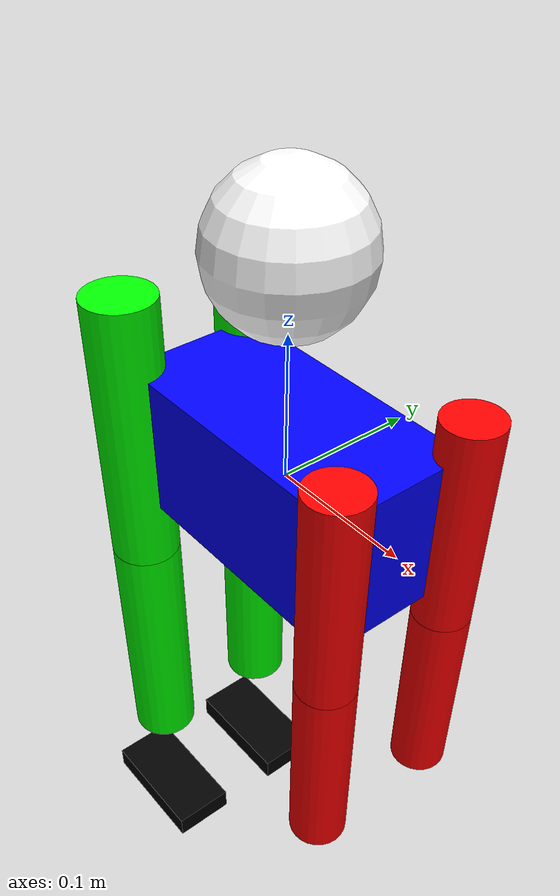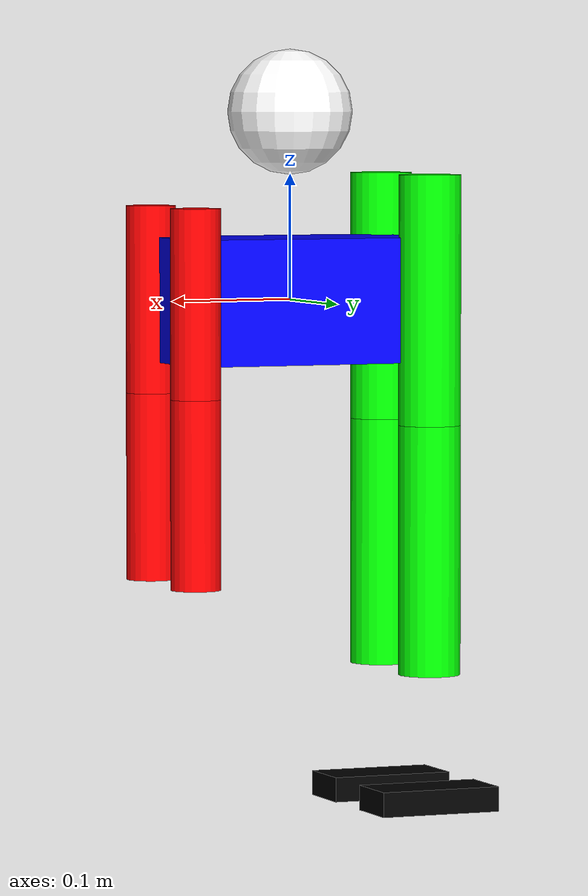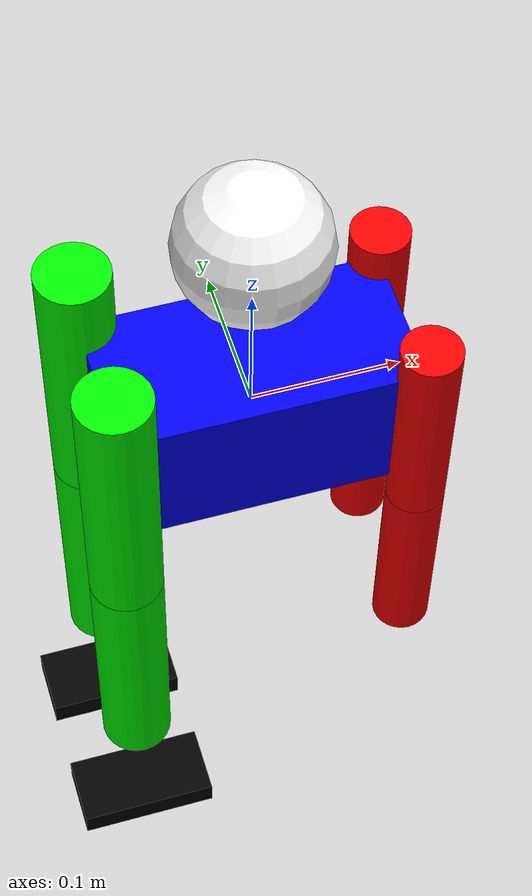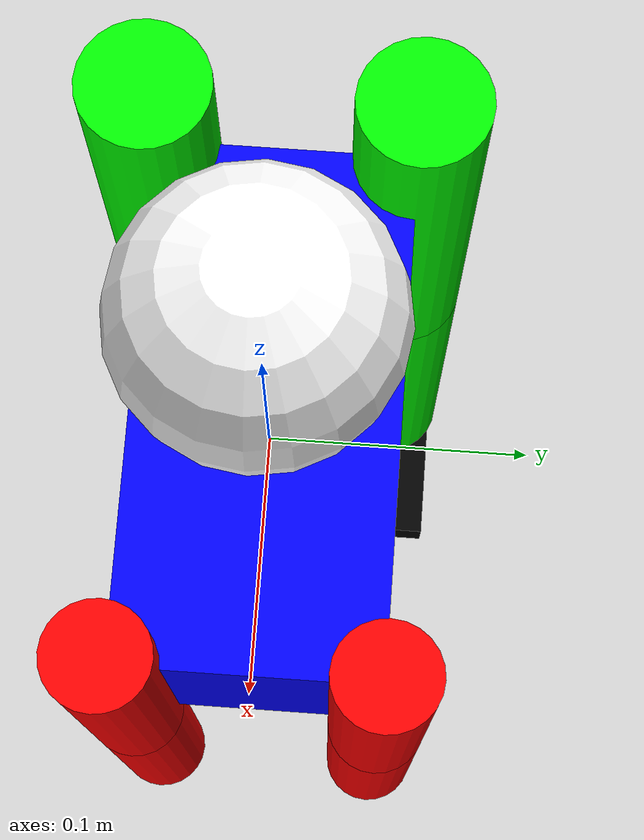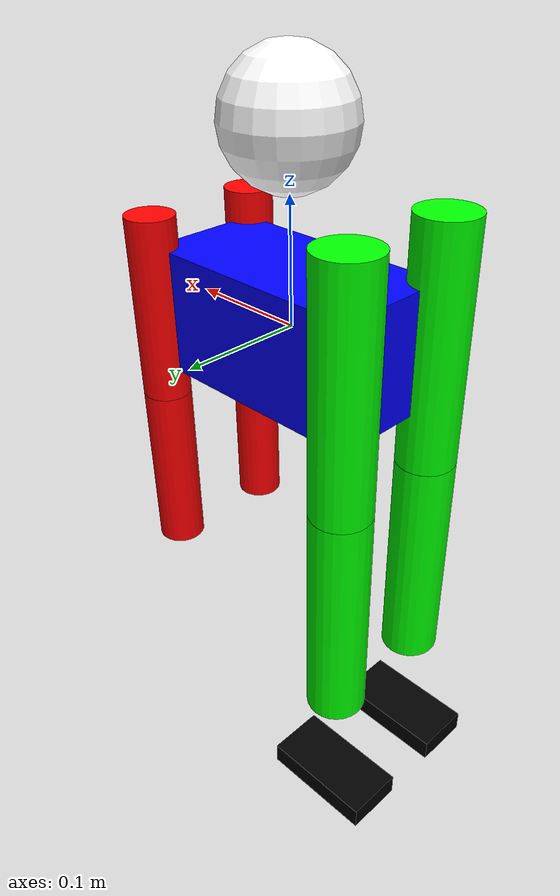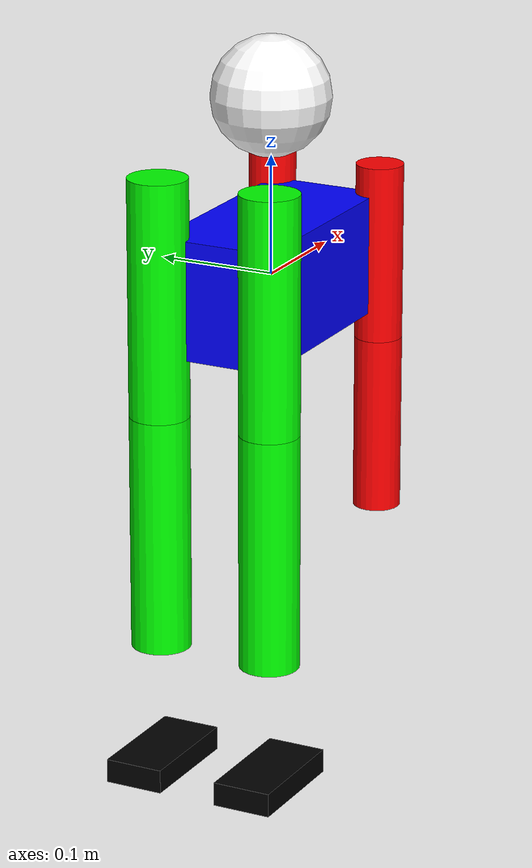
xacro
<?xml version="1.0"?>
<robot xmlns:xacro="http://www.ros.org/wiki/xacro" name="humanoid_robot">

  <!-- Base Link -->
  <link name="base_link">
    <visual>
      <geometry>
        <box size="0.2 0.1 0.1"/>
      </geometry>
      <material name="blue">
        <color rgba="0 0 1 1"/>
      </material>
    </visual>
    <collision>
      <geometry>
        <box size="0.2 0.1 0.1"/>
      </geometry>
    </collision>
    <inertial>
      <mass value="1.0"/>
      <inertia ixx="0.01" ixy="0.0" ixz="0.0" iyy="0.01" iyz="0.0" izz="0.01"/>
    </inertial>
  </link>

  <!-- Head -->
  <joint name="head_joint" type="fixed">
    <parent link="base_link"/>
    <child link="head"/>
    <origin xyz="0 0 0.15" rpy="0 0 0"/>
  </joint>

  <link name="head">
    <visual>
      <geometry>
        <sphere radius="0.05"/>
      </geometry>
      <material name="white">
        <color rgba="1 1 1 1"/>
      </material>
    </visual>
    <collision>
      <geometry>
        <sphere radius="0.05"/>
      </geometry>
    </collision>
    <inertial>
      <mass value="0.2"/>
      <inertia ixx="0.0001" ixy="0.0" ixz="0.0" iyy="0.0001" iyz="0.0" izz="0.0001"/>
    </inertial>
  </link>

  <!-- Left Arm -->
  <joint name="left_shoulder_joint" type="revolute">
    <parent link="base_link"/>
    <child link="left_upper_arm"/>
    <origin xyz="0.1 0.05 0" rpy="0 0 0"/>
    <axis xyz="0 1 0"/>
    <limit lower="-1.57" upper="1.57" effort="100" velocity="1"/>
  </joint>

  <link name="left_upper_arm">
    <visual>
      <geometry>
        <cylinder length="0.15" radius="0.02"/>
      </geometry>
      <material name="red">
        <color rgba="1 0 0 1"/>
      </material>
    </visual>
    <collision>
      <geometry>
        <cylinder length="0.15" radius="0.02"/>
      </geometry>
    </collision>
    <inertial>
      <mass value="0.1"/>
      <inertia ixx="0.0001" ixy="0.0" ixz="0.0" iyy="0.0001" iyz="0.0" izz="0.0001"/>
    </inertial>
  </link>

  <joint name="left_elbow_joint" type="revolute">
    <parent link="left_upper_arm"/>
    <child link="left_lower_arm"/>
    <origin xyz="0 0 -0.15" rpy="0 0 0"/>
    <axis xyz="0 1 0"/>
    <limit lower="-1.57" upper="1.57" effort="100" velocity="1"/>
  </joint>

  <link name="left_lower_arm">
    <visual>
      <geometry>
        <cylinder length="0.15" radius="0.02"/>
      </geometry>
      <material name="red">
        <color rgba="1 0 0 1"/>
      </material>
    </visual>
    <collision>
      <geometry>
        <cylinder length="0.15" radius="0.02"/>
      </geometry>
    </collision>
    <inertial>
      <mass value="0.1"/>
      <inertia ixx="0.0001" ixy="0.0" ixz="0.0" iyy="0.0001" iyz="0.0" izz="0.0001"/>
    </inertial>
  </link>

  <!-- Right Arm -->
  <joint name="right_shoulder_joint" type="revolute">
    <parent link="base_link"/>
    <child link="right_upper_arm"/>
    <origin xyz="0.1 -0.05 0" rpy="0 0 0"/>
    <axis xyz="0 1 0"/>
    <limit lower="-1.57" upper="1.57" effort="100" velocity="1"/>
  </joint>

  <link name="right_upper_arm">
    <visual>
      <geometry>
        <cylinder length="0.15" radius="0.02"/>
      </geometry>
      <material name="red">
        <color rgba="1 0 0 1"/>
      </material>
    </visual>
    <collision>
      <geometry>
        <cylinder length="0.15" radius="0.02"/>
      </geometry>
    </collision>
    <inertial>
      <mass value="0.1"/>
      <inertia ixx="0.0001" ixy="0.0" ixz="0.0" iyy="0.0001" iyz="0.0" izz="0.0001"/>
    </inertial>
  </link>

  <joint name="right_elbow_joint" type="revolute">
    <parent link="right_upper_arm"/>
    <child link="right_lower_arm"/>
    <origin xyz="0 0 -0.15" rpy="0 0 0"/>
    <axis xyz="0 1 0"/>
    <limit lower="-1.57" upper="1.57" effort="100" velocity="1"/>
  </joint>

  <link name="right_lower_arm">
    <visual>
      <geometry>
        <cylinder length="0.15" radius="0.02"/>
      </geometry>
      <material name="red">
        <color rgba="1 0 0 1"/>
      </material>
    </visual>
    <collision>
      <geometry>
        <cylinder length="0.15" radius="0.02"/>
      </geometry>
    </collision>
    <inertial>
      <mass value="0.1"/>
      <inertia ixx="0.0001" ixy="0.0" ixz="0.0" iyy="0.0001" iyz="0.0" izz="0.0001"/>
    </inertial>
  </link>

  <!-- Left Leg -->
  <joint name="left_hip_joint" type="revolute">
    <parent link="base_link"/>
    <child link="left_upper_leg"/>
    <origin xyz="-0.1 0.05 0" rpy="0 0 0"/>
    <axis xyz="0 1 0"/>
    <limit lower="-1.57" upper="1.57" effort="100" velocity="1"/>
  </joint>

  <link name="left_upper_leg">
    <visual>
      <geometry>
        <cylinder length="0.2" radius="0.025"/>
      </geometry>
      <material name="green">
        <color rgba="0 1 0 1"/>
      </material>
    </visual>
    <collision>
      <geometry>
        <cylinder length="0.2" radius="0.025"/>
      </geometry>
    </collision>
    <inertial>
      <mass value="0.2"/>
      <inertia ixx="0.0002" ixy="0.0" ixz="0.0" iyy="0.0002" iyz="0.0" izz="0.0002"/>
    </inertial>
  </link>

  <joint name="left_knee_joint" type="revolute">
    <parent link="left_upper_leg"/>
    <child link="left_lower_leg"/>
    <origin xyz="0 0 -0.2" rpy="0 0 0"/>
    <axis xyz="0 1 0"/>
    <limit lower="-1.57" upper="1.57" effort="100" velocity="1"/>
  </joint>

  <link name="left_lower_leg">
    <visual>
      <geometry>
        <cylinder length="0.2" radius="0.025"/>
      </geometry>
      <material name="green">
        <color rgba="0 1 0 1"/>
      </material>
    </visual>
    <collision>
      <geometry>
        <cylinder length="0.2" radius="0.025"/>
      </geometry>
    </collision>
    <inertial>
      <mass value="0.2"/>
      <inertia ixx="0.0002" ixy="0.0" ixz="0.0" iyy="0.0002" iyz="0.0" izz="0.0002"/>
    </inertial>
  </link>

  <joint name="left_foot_joint" type="fixed">
    <parent link="left_lower_leg"/>
    <child link="left_foot"/>
    <origin xyz="0 0 -0.2" rpy="0 0 0"/>
  </joint>

  <link name="left_foot">
    <visual>
      <geometry>
        <box size="0.1 0.05 0.02"/>
      </geometry>
      <material name="black">
        <color rgba="0 0 0 1"/>
      </material>
    </visual>
    <collision>
      <geometry>
        <box size="0.1 0.05 0.02"/>
      </geometry>
    </collision>
    <inertial>
      <mass value="0.1"/>
      <inertia ixx="0.0001" ixy="0.0" ixz="0.0" iyy="0.0001" iyz="0.0" izz="0.0001"/>
    </inertial>
  </link>

  <!-- Right Leg -->
  <joint name="right_hip_joint" type="revolute">
    <parent link="base_link"/>
    <child link="right_upper_leg"/>
    <origin xyz="-0.1 -0.05 0" rpy="0 0 0"/>
    <axis xyz="0 1 0"/>
    <limit lower="-1.57" upper="1.57" effort="100" velocity="1"/>
  </joint>

  <link name="right_upper_leg">
    <visual>
      <geometry>
        <cylinder length="0.2" radius="0.025"/>
      </geometry>
      <material name="green">
        <color rgba="0 1 0 1"/>
      </material>
    </visual>
    <collision>
      <geometry>
        <cylinder length="0.2" radius="0.025"/>
      </geometry>
    </collision>
    <inertial>
      <mass value="0.2"/>
      <inertia ixx="0.0002" ixy="0.0" ixz="0.0" iyy="0.0002" iyz="0.0" izz="0.0002"/>
    </inertial>
  </link>

  <joint name="right_knee_joint" type="revolute">
    <parent link="right_upper_leg"/>
    <child link="right_lower_leg"/>
    <origin xyz="0 0 -0.2" rpy="0 0 0"/>
    <axis xyz="0 1 0"/>
    <limit lower="-1.57" upper="1.57" effort="100" velocity="1"/>
  </joint>

  <link name="right_lower_leg">
    <visual>
      <geometry>
        <cylinder length="0.2" radius="0.025"/>
      </geometry>
      <material name="green">
        <color rgba="0 1 0 1"/>
      </material>
    </visual>
    <collision>
      <geometry>
        <cylinder length="0.2" radius="0.025"/>
      </geometry>
    </collision>
    <inertial>
      <mass value="0.2"/>
      <inertia ixx="0.0002" ixy="0.0" ixz="0.0" iyy="0.0002" iyz="0.0" izz="0.0002"/>
    </inertial>
  </link>

  <joint name="right_foot_joint" type="fixed">
    <parent link="right_lower_leg"/>
    <child link="right_foot"/>
    <origin xyz="0 0 -0.2" rpy="0 0 0"/>
  </joint>

  <link name="right_foot">
    <visual>
      <geometry>
        <box size="0.1 0.05 0.02"/>
      </geometry>
      <material name="black">
        <color rgba="0 0 0 1"/>
      </material>
    </visual>
    <collision>
      <geometry>
        <box size="0.1 0.05 0.02"/>
      </geometry>
    </collision>
    <inertial>
      <mass value="0.1"/>
      <inertia ixx="0.0001" ixy="0.0" ixz="0.0" iyy="0.0001" iyz="0.0" izz="0.0001"/>
    </inertial>
  </link>

</robot>
